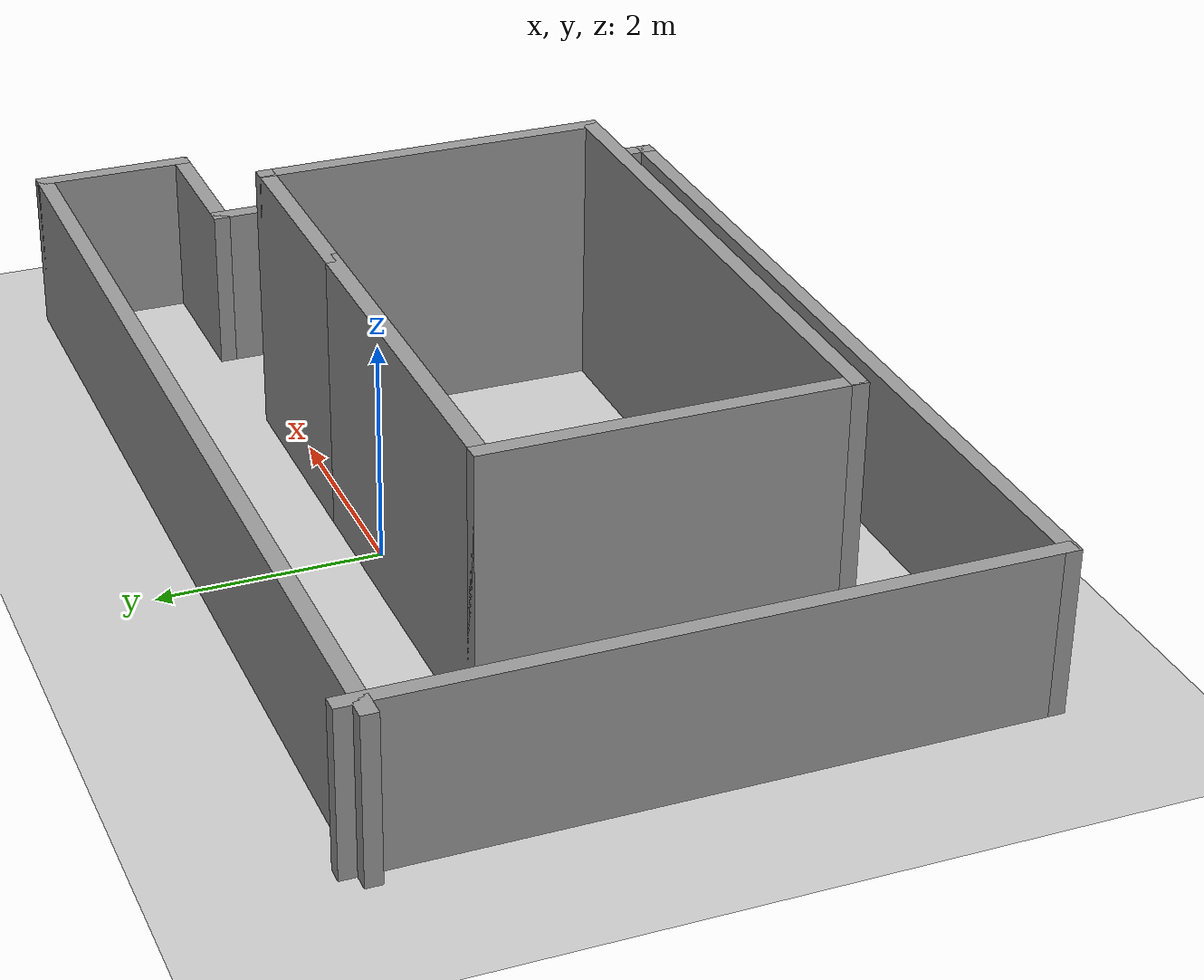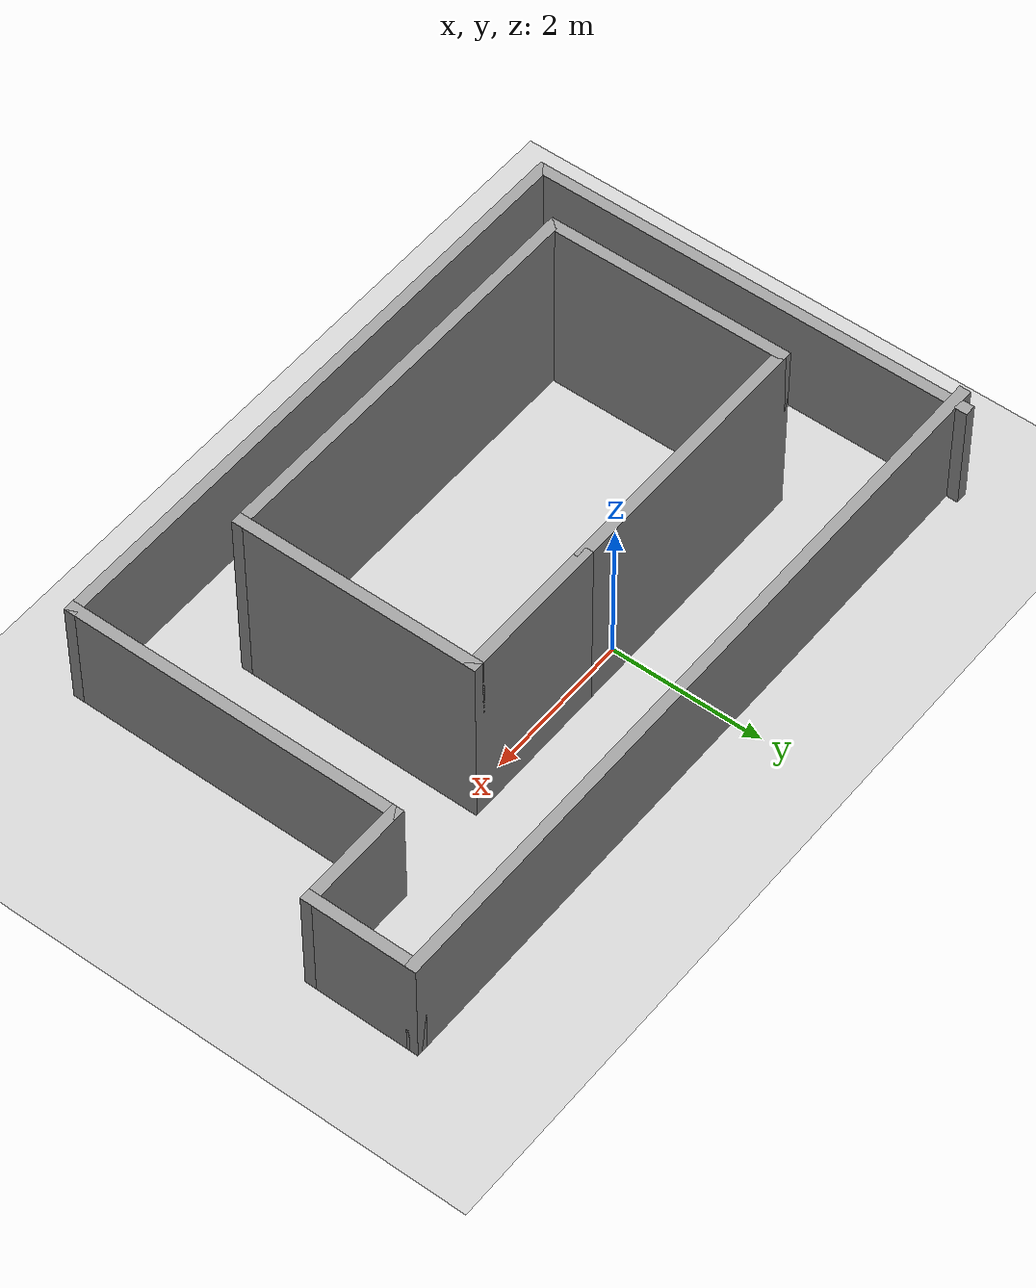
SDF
<sdf version="1.6">
 <world name="default">
  <light name="sun" type="directional">
   <pose>0 0 10 0 -0 0</pose>
   <diffuse>0.8 0.8 0.8 1</diffuse>
   <specular>0.2 0.2 0.2 1</specular>
   <attenuation>
    <range>1000</range>
    <constant>0.9</constant>
    <linear>0.01</linear>
    <quadratic>0.001</quadratic>
   </attenuation>
   <direction>-0.5 0.1 -0.9</direction>
  </light>
  <model name="ground_plane">
   <static>1</static>
   <link name="link">
    <collision name="collision">
     <geometry><plane><normal>0 0 1</normal><size>100 100</size></plane></geometry>
     <surface>
      <contact><collide_bitmask>65535</collide_bitmask></contact>
      <friction><ode><mu>100</mu><mu2>50</mu2></ode></friction>
     </surface>
    </collision>
    <visual name="visual">
     <cast_shadows>0</cast_shadows>
     <geometry><plane><normal>0 0 1</normal><size>100 100</size></plane></geometry>
     <material>
      <script><uri>file://media/materials/scripts/gazebo.material</uri><name>Gazebo/Grey</name></script>
     </material>
    </visual>
   </link>
  </model>
  <gravity>0 0 -9.8</gravity>
  <magnetic_field>6e-06 2.3e-05 -4.2e-05</magnetic_field>
  <atmosphere type="adiabatic"/>
  <physics name="default_physics" default="0" type="ode">
   <max_step_size>0.001</max_step_size>
   <real_time_factor>1</real_time_factor>
   <real_time_update_rate>1000</real_time_update_rate>
  </physics>
  <scene><ambient>0.4 0.4 0.4 1</ambient><background>0.7 0.7 0.7 1</background><shadows>1</shadows></scene>
  <spherical_coordinates>
   <surface_model>EARTH_WGS84</surface_model>
   <latitude_deg>0</latitude_deg>
   <longitude_deg>0</longitude_deg>
   <elevation>0</elevation>
   <heading_deg>0</heading_deg>
  </spherical_coordinates>
  <model name="corridor3">
   <pose>0.557471 -1.2255 0 0 -0 0</pose>
   <link name="Wall_0">
    <collision name="Wall_0_Collision">
     <geometry><box><size>9.75 0.15 1.5</size></box></geometry>
     <pose>0 0 0.75 0 -0 0</pose>
    </collision>
    <visual name="Wall_0_Visual">
     <pose>0 0 0.75 0 -0 0</pose>
     <geometry><box><size>9.75 0.15 1.5</size></box></geometry>
     <material>
      <script><uri>file://media/materials/scripts/gazebo.material</uri><name>Gazebo/Grey</name></script>
      <ambient>1 1 1 1</ambient>
     </material>
     <meta><layer>0</layer></meta>
    </visual>
    <pose>-0 2.775 0 0 -0 0</pose>
   </link>
   <link name="Wall_1">
    <collision name="Wall_1_Collision">
     <geometry><box><size>1.5 0.15 1.5</size></box></geometry>
     <pose>0 0 0.75 0 -0 0</pose>
    </collision>
    <visual name="Wall_1_Visual">
     <pose>0 0 0.75 0 -0 0</pose>
     <geometry><box><size>1.5 0.15 1.5</size></box></geometry>
     <material>
      <script><uri>file://media/materials/scripts/gazebo.material</uri><name>Gazebo/Grey</name></script>
      <ambient>1 1 1 1</ambient>
     </material>
     <meta><layer>0</layer></meta>
    </visual>
    <pose>4.8 2.1 0 0 -0 -1.5708</pose>
   </link>
   <link name="Wall_10">
    <collision name="Wall_10_Collision">
     <geometry><box><size>3.25 0.15 2.5</size></box></geometry>
     <pose>0 0 1.25 0 -0 0</pose>
    </collision>
    <visual name="Wall_10_Visual">
     <pose>0 0 1.25 0 -0 0</pose>
     <geometry><box><size>3.25 0.15 2.5</size></box></geometry>
     <material>
      <script><uri>file://media/materials/scripts/gazebo.material</uri><name>Gazebo/Grey</name></script>
      <ambient>1 1 1 1</ambient>
     </material>
     <meta><layer>0</layer></meta>
    </visual>
    <pose>-3.31 -0.185 0 0 -0 1.5708</pose>
   </link>
   <link name="Wall_11">
    <collision name="Wall_11_Collision">
     <geometry><box><size>3.65 0.15 2.5</size></box></geometry>
     <pose>0 0 1.25 0 -0 0</pose>
    </collision>
    <visual name="Wall_11_Visual">
     <pose>0 0 1.25 0 -0 0</pose>
     <geometry><box><size>3.65 0.15 2.5</size></box></geometry>
     <material>
      <script><uri>file://media/materials/scripts/gazebo.material</uri><name>Gazebo/Grey</name></script>
      <ambient>1 1 1 1</ambient>
     </material>
     <meta><layer>0</layer></meta>
    </visual>
    <pose>-1.56 1.365 0 0 -0 0</pose>
   </link>
   <link name="Wall_2">
    <collision name="Wall_2_Collision">
     <geometry><box><size>1.5 0.15 1.5</size></box></geometry>
     <pose>0 0 0.75 0 -0 0</pose>
    </collision>
    <visual name="Wall_2_Visual">
     <pose>0 0 0.75 0 -0 0</pose>
     <geometry><box><size>1.5 0.15 1.5</size></box></geometry>
     <material>
      <script><uri>file://media/materials/scripts/gazebo.material</uri><name>Gazebo/Grey</name></script>
      <ambient>1 1 1 1</ambient>
     </material>
     <meta><layer>0</layer></meta>
    </visual>
    <pose>4.125 1.425 0 0 -0 3.14159</pose>
   </link>
   <link name="Wall_3">
    <collision name="Wall_3_Collision">
     <geometry><box><size>4.5 0.15 1.5</size></box></geometry>
     <pose>0 0 0.75 0 -0 0</pose>
    </collision>
    <visual name="Wall_3_Visual">
     <pose>0 0 0.75 0 -0 0</pose>
     <geometry><box><size>4.5 0.15 1.5</size></box></geometry>
     <material>
      <script><uri>file://media/materials/scripts/gazebo.material</uri><name>Gazebo/Grey</name></script>
      <ambient>1 1 1 1</ambient>
     </material>
     <meta><layer>0</layer></meta>
    </visual>
    <pose>3.45 -0.75 0 0 -0 -1.5708</pose>
   </link>
   <link name="Wall_4">
    <collision name="Wall_4_Collision">
     <geometry><box><size>8.25 0.15 1.5</size></box></geometry>
     <pose>0 0 0.75 0 -0 0</pose>
    </collision>
    <visual name="Wall_4_Visual">
     <pose>0 0 0.75 0 -0 0</pose>
     <geometry><box><size>8.25 0.15 1.5</size></box></geometry>
     <material>
      <script><uri>file://media/materials/scripts/gazebo.material</uri><name>Gazebo/Grey</name></script>
      <ambient>1 1 1 1</ambient>
     </material>
     <meta><layer>0</layer></meta>
    </visual>
    <pose>-0.6 -2.925 0 0 -0 3.14159</pose>
   </link>
   <link name="Wall_5">
    <collision name="Wall_5_Collision">
     <geometry><box><size>6 0.15 1.5</size></box></geometry>
     <pose>0 0 0.75 0 -0 0</pose>
    </collision>
    <visual name="Wall_5_Visual">
     <pose>0 0 0.75 0 -0 0</pose>
     <geometry><box><size>6 0.15 1.5</size></box></geometry>
     <material>
      <script><uri>file://media/materials/scripts/gazebo.material</uri><name>Gazebo/Grey</name></script>
      <ambient>1 1 1 1</ambient>
     </material>
     <meta><layer>0</layer></meta>
    </visual>
    <pose>-4.65 0 0 0 -0 1.5708</pose>
   </link>
   <link name="Wall_7">
    <collision name="Wall_7_Collision">
     <geometry><box><size>2 0.15 2.5</size></box></geometry>
     <pose>0 0 1.25 0 -0 0</pose>
    </collision>
    <visual name="Wall_7_Visual">
     <pose>0 0 1.25 0 -0 0</pose>
     <geometry><box><size>2 0.15 2.5</size></box></geometry>
     <material>
      <script><uri>file://media/materials/scripts/gazebo.material</uri><name>Gazebo/Grey</name></script>
      <ambient>1 1 1 1</ambient>
     </material>
     <meta><layer>0</layer></meta>
    </visual>
    <pose>1.115 1.365 0 0 -0 0</pose>
   </link>
   <link name="Wall_8">
    <collision name="Wall_8_Collision">
     <geometry><box><size>3.25 0.15 2.5</size></box></geometry>
     <pose>0 0 1.25 0 -0 0</pose>
    </collision>
    <visual name="Wall_8_Visual">
     <pose>0 0 1.25 0 -0 0</pose>
     <geometry><box><size>3.25 0.15 2.5</size></box></geometry>
     <material>
      <script><uri>file://media/materials/scripts/gazebo.material</uri><name>Gazebo/Grey</name></script>
      <ambient>1 1 1 1</ambient>
     </material>
     <meta><layer>0</layer></meta>
    </visual>
    <pose>2.04 -0.185 0 0 -0 -1.5708</pose>
   </link>
   <link name="Wall_9">
    <collision name="Wall_9_Collision">
     <geometry><box><size>5.5 0.15 2.5</size></box></geometry>
     <pose>0 0 1.25 0 -0 0</pose>
    </collision>
    <visual name="Wall_9_Visual">
     <pose>0 0 1.25 0 -0 0</pose>
     <geometry><box><size>5.5 0.15 2.5</size></box></geometry>
     <material>
      <script><uri>file://media/materials/scripts/gazebo.material</uri><name>Gazebo/Grey</name></script>
      <ambient>1 1 1 1</ambient>
     </material>
     <meta><layer>0</layer></meta>
    </visual>
    <pose>-0.635 -1.735 0 0 -0 3.14159</pose>
   </link>
   <static>1</static>
  </model>
 </world>
</sdf>
